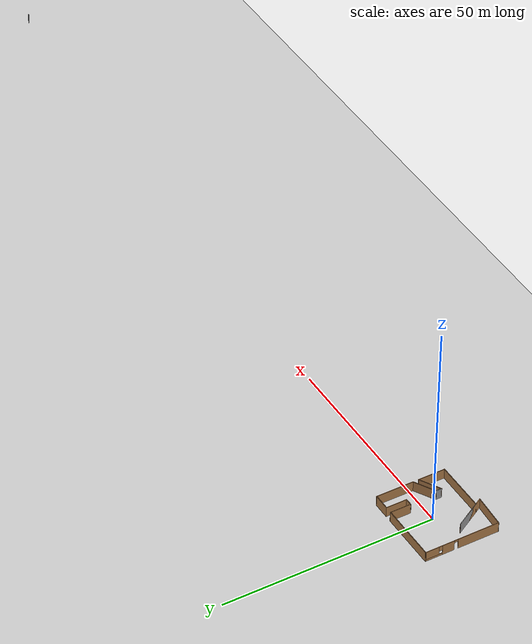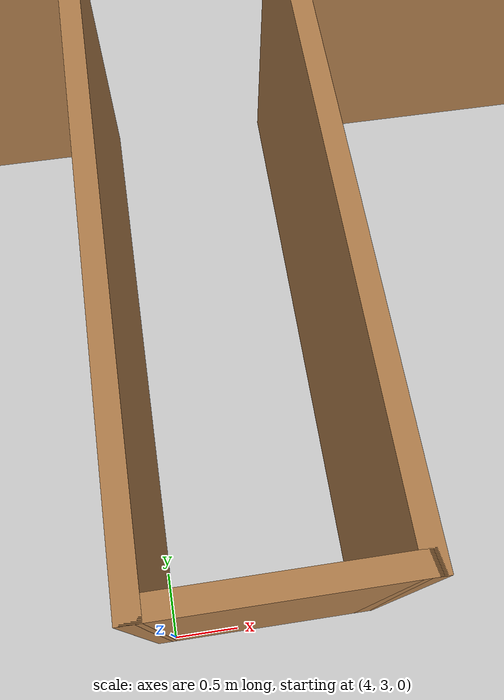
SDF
<sdf version="1.7">
 <world name="default">
  <light name="sun" type="directional">
   <pose>0 0 10 0 -0 0</pose>
   <diffuse>0.8 0.8 0.8 1</diffuse>
   <specular>0.2 0.2 0.2 1</specular>
   <attenuation>
    <range>1000</range>
    <constant>0.9</constant>
    <linear>0.01</linear>
    <quadratic>0.001</quadratic>
   </attenuation>
   <direction>-0.5 0.1 -0.9</direction>
   <spot><inner_angle>0</inner_angle><outer_angle>0</outer_angle><falloff>0</falloff></spot>
  </light>
  <model name="ground_plane">
   <static>1</static>
   <link name="link">
    <collision name="collision">
     <geometry><plane><normal>0 0 1</normal><size>100 100</size></plane></geometry>
     <surface>
      <contact><collide_bitmask>65535</collide_bitmask></contact>
      <friction><ode><mu>100</mu><mu2>50</mu2></ode></friction>
     </surface>
    </collision>
    <visual name="visual">
     <cast_shadows>0</cast_shadows>
     <geometry><plane><normal>0 0 1</normal><size>100 100</size></plane></geometry>
     <material>
      <script><uri>file://media/materials/scripts/gazebo.material</uri><name>Gazebo/Grey</name></script>
     </material>
    </visual>
   </link>
  </model>
  <gravity>0 0 -9.8</gravity>
  <magnetic_field>6e-06 2.3e-05 -4.2e-05</magnetic_field>
  <atmosphere type="adiabatic"/>
  <physics type="ode">
   <max_step_size>0.001</max_step_size>
   <real_time_factor>1</real_time_factor>
   <real_time_update_rate>1000</real_time_update_rate>
  </physics>
  <scene><ambient>0.4 0.4 0.4 1</ambient><background>0.7 0.7 0.7 1</background><shadows>1</shadows></scene>
  <spherical_coordinates>
   <surface_model>EARTH_WGS84</surface_model>
   <latitude_deg>0</latitude_deg>
   <longitude_deg>0</longitude_deg>
   <elevation>0</elevation>
   <heading_deg>0</heading_deg>
  </spherical_coordinates>
  <model name="world1">
   <pose>93.3997 -1.14949 0 0 -0 0</pose>
   <link name="Wall_0">
    <collision name="Wall_0_Collision">
     <geometry><box><size>0.16 0.15 2.5</size></box></geometry>
     <pose>0 0 1.25 0 -0 0</pose>
    </collision>
    <visual name="Wall_0_Visual">
     <pose>0 0 1.25 0 -0 0</pose>
     <geometry><box><size>0.16 0.15 2.5</size></box></geometry>
     <material>
      <script><uri>file://media/materials/scripts/gazebo.material</uri><name>Gazebo/Grey</name></script>
      <ambient>1 1 1 1</ambient>
     </material>
     <meta><layer>0</layer></meta>
    </visual>
    <pose>103.066 -6.16786 0 0 -0 0</pose>
   </link>
   <link name="Wall_10">
    <collision name="Wall_10_Collision">
     <geometry><box><size>5 0.15 2.5</size></box></geometry>
     <pose>0 0 1.25 0 -0 0</pose>
    </collision>
    <visual name="Wall_10_Visual">
     <pose>0 0 1.25 0 -0 0</pose>
     <geometry><box><size>5 0.15 2.5</size></box></geometry>
     <material>
      <script><uri>file://media/materials/scripts/gazebo.material</uri><name>Gazebo/Wood</name></script>
      <ambient>1 1 1 1</ambient>
     </material>
     <meta><layer>0</layer></meta>
    </visual>
    <pose>-87.8665 6.6215 0 0 -0 1.5708</pose>
   </link>
   <link name="Wall_11">
    <collision name="Wall_11_Collision">
     <geometry><box><size>4 0.15 2.5</size></box></geometry>
     <pose>0 0 1.25 0 -0 0</pose>
    </collision>
    <visual name="Wall_11_Visual">
     <pose>0 0 1.25 0 -0 0</pose>
     <geometry><box><size>4 0.15 2.5</size></box></geometry>
     <material>
      <script><uri>file://media/materials/scripts/gazebo.material</uri><name>Gazebo/Wood</name></script>
      <ambient>1 1 1 1</ambient>
     </material>
     <meta><layer>0</layer></meta>
    </visual>
    <pose>-85.9415 9.0465 0 0 -0 0</pose>
   </link>
   <link name="Wall_12">
    <collision name="Wall_12_Collision">
     <geometry><box><size>9 0.15 2.5</size></box></geometry>
     <pose>0 0 1.25 0 -0 0</pose>
    </collision>
    <visual name="Wall_12_Visual">
     <pose>0 0 1.25 0 -0 0</pose>
     <geometry><box><size>9 0.15 2.5</size></box></geometry>
     <material>
      <script><uri>file://media/materials/scripts/gazebo.material</uri><name>Gazebo/Wood</name></script>
      <ambient>1 1 1 1</ambient>
     </material>
     <meta><layer>0</layer></meta>
    </visual>
    <pose>-84.0165 4.6215 0 0 -0 -1.5708</pose>
   </link>
   <link name="Wall_13">
    <collision name="Wall_13_Collision">
     <geometry><box><size>5.5 0.15 2.5</size></box></geometry>
     <pose>0 0 1.25 0 -0 0</pose>
    </collision>
    <visual name="Wall_13_Visual">
     <pose>0 0 1.25 0 -0 0</pose>
     <geometry><box><size>5.5 0.15 2.5</size></box></geometry>
     <material>
      <script><uri>file://media/materials/scripts/gazebo.material</uri><name>Gazebo/Wood</name></script>
      <ambient>1 1 1 1</ambient>
     </material>
     <meta><layer>0</layer></meta>
    </visual>
    <pose>-86.3331 -1.141 0 0 -0 -2.61799</pose>
   </link>
   <link name="Wall_14">
    <collision name="Wall_14_Collision">
     <geometry><box><size>1.5 0.15 2.5</size></box></geometry>
     <pose>0 0 1.25 0 -0 0</pose>
    </collision>
    <visual name="Wall_14_Visual">
     <pose>0 0 1.25 0 -0 0</pose>
     <geometry><box><size>1.5 0.15 2.5</size></box></geometry>
     <material>
      <script><uri>file://media/materials/scripts/gazebo.material</uri><name>Gazebo/Grey</name></script>
      <ambient>1 1 1 1</ambient>
     </material>
     <meta><layer>0</layer></meta>
    </visual>
    <pose>-88.6497 -3.1535 0 0 -0 -1.5708</pose>
   </link>
   <link name="Wall_15">
    <collision name="Wall_15_Collision">
     <geometry><box><size>5.5 0.15 2.5</size></box></geometry>
     <pose>0 0 1.25 0 -0 0</pose>
    </collision>
    <visual name="Wall_15_Visual">
     <pose>0 0 1.25 0 -0 0</pose>
     <geometry><box><size>5.5 0.15 2.5</size></box></geometry>
     <material>
      <script><uri>file://media/materials/scripts/gazebo.material</uri><name>Gazebo/Wood</name></script>
      <ambient>1 1 1 1</ambient>
     </material>
     <meta><layer>0</layer></meta>
    </visual>
    <pose>-86.3331 -2.491 0 0 -0 0.523599</pose>
   </link>
   <link name="Wall_16">
    <collision name="Wall_16_Collision">
     <geometry><box><size>6.5 0.15 2.5</size></box></geometry>
     <pose>0 0 1.25 0 -0 0</pose>
    </collision>
    <visual name="Wall_16_Visual">
     <pose>0 0 1.25 0 -0 0</pose>
     <geometry><box><size>6.5 0.15 2.5</size></box></geometry>
     <material>
      <script><uri>file://media/materials/scripts/gazebo.material</uri><name>Gazebo/Wood</name></script>
      <ambient>1 1 1 1</ambient>
     </material>
     <meta><layer>0</layer></meta>
    </visual>
    <pose>-84.0165 -4.3285 0 0 -0 -1.5708</pose>
   </link>
   <link name="Wall_17">
    <collision name="Wall_17_Collision">
     <geometry><box><size>12.25 0.15 2.5</size></box></geometry>
     <pose>0 0 1.25 0 -0 0</pose>
    </collision>
    <visual name="Wall_17_Visual">
     <pose>0 0 1.25 0 -0 0</pose>
     <geometry><box><size>12.25 0.15 2.5</size></box></geometry>
     <material>
      <script><uri>file://media/materials/scripts/gazebo.material</uri><name>Gazebo/Wood</name></script>
      <ambient>1 1 1 1</ambient>
     </material>
     <meta><layer>0</layer></meta>
    </visual>
    <pose>-90.0665 -7.5035 0 0 -0 3.14159</pose>
   </link>
   <link name="Wall_18">
    <collision name="Wall_18_Collision">
     <geometry><box><size>7 0.15 2.5</size></box></geometry>
     <pose>0 0 1.25 0 -0 0</pose>
    </collision>
    <visual name="Wall_18_Visual">
     <pose>0 0 1.25 0 -0 0</pose>
     <geometry><box><size>7 0.15 2.5</size></box></geometry>
     <material>
      <script><uri>file://media/materials/scripts/gazebo.material</uri><name>Gazebo/Grey</name></script>
      <ambient>1 1 1 1</ambient>
     </material>
     <meta><layer>0</layer></meta>
    </visual>
    <pose>-97.829 -4.53737 0 0 -0 2.0944</pose>
   </link>
   <link name="Wall_19">
    <collision name="Wall_19_Collision">
     <geometry><box><size>8.75 0.15 2.5</size></box></geometry>
     <pose>0 0 1.25 0 -0 0</pose>
    </collision>
    <visual name="Wall_19_Visual">
     <pose>0 0 1.25 0 -0 0</pose>
     <geometry><box><size>8.75 0.15 2.5</size></box></geometry>
     <material>
      <script><uri>file://media/materials/scripts/gazebo.material</uri><name>Gazebo/Wood</name></script>
      <ambient>1 1 1 1</ambient>
     </material>
     <meta><layer>0</layer></meta>
    </visual>
    <pose>-97.3915 -5.29514 0 0 -0 -1.0472</pose>
   </link>
   <link name="Wall_20">
    <collision name="Wall_20_Collision">
     <geometry><box><size>7.98884 0.15 2.5</size></box></geometry>
     <pose>0 0 1.25 0 -0 0</pose>
    </collision>
    <visual name="Wall_20_Visual">
     <pose>0 0 1.25 0 -0 0</pose>
     <geometry><box><size>7.98884 0.15 2.5</size></box></geometry>
     <material>
      <script><uri>file://media/materials/scripts/gazebo.material</uri><name>Gazebo/Wood</name></script>
      <ambient>1 1 1 1</ambient>
     </material>
     <meta><layer>0</layer></meta>
    </visual>
    <pose>-99.154 -8.78627 0 0 -0 3.08217</pose>
   </link>
   <link name="Wall_6">
    <pose>-103.066 0.246498 0 0 -0 1.5708</pose>
    <visual name="Wall_6_Visual_0">
     <pose>-3.92516 0 1.25 0 -0 0</pose>
     <geometry><box><size>9.89968 0.15 2.5</size></box></geometry>
     <material>
      <script><uri>file://media/materials/scripts/gazebo.material</uri><name>Gazebo/Wood</name></script>
      <ambient>1 1 1 1</ambient>
     </material>
     <meta><layer>0</layer></meta>
    </visual>
    <collision name="Wall_6_Collision_0">
     <geometry><box><size>9.89968 0.15 2.5</size></box></geometry>
     <pose>-3.92516 0 1.25 0 -0 0</pose>
    </collision>
    <visual name="Wall_6_Visual_1">
     <pose>3.3517 0 1.25 0 -0 0</pose>
     <geometry><box><size>2.85404 0.15 2.5</size></box></geometry>
     <material>
      <script><uri>file://media/materials/scripts/gazebo.material</uri><name>Gazebo/Wood</name></script>
      <ambient>1 1 1 1</ambient>
     </material>
     <meta><layer>0</layer></meta>
    </visual>
    <collision name="Wall_6_Collision_1">
     <geometry><box><size>2.85404 0.15 2.5</size></box></geometry>
     <pose>3.3517 0 1.25 0 -0 0</pose>
    </collision>
    <visual name="Wall_6_Visual_2">
     <pose>6.82686 0 0.25 0 -0 0</pose>
     <geometry><box><size>4.09628 0.15 0.5</size></box></geometry>
     <material>
      <script><uri>file://media/materials/scripts/gazebo.material</uri><name>Gazebo/Wood</name></script>
      <ambient>1 1 1 1</ambient>
     </material>
     <meta><layer>0</layer></meta>
    </visual>
    <collision name="Wall_6_Collision_2">
     <geometry><box><size>4.09628 0.15 0.5</size></box></geometry>
     <pose>6.82686 0 0.25 0 -0 0</pose>
    </collision>
    <visual name="Wall_6_Visual_3">
     <pose>7.22686 0 1.5 0 -0 0</pose>
     <geometry><box><size>3.29629 0.15 2</size></box></geometry>
     <material>
      <script><uri>file://media/materials/scripts/gazebo.material</uri><name>Gazebo/Wood</name></script>
      <ambient>1 1 1 1</ambient>
     </material>
     <meta><layer>0</layer></meta>
    </visual>
    <collision name="Wall_6_Collision_3">
     <geometry><box><size>3.29629 0.15 2</size></box></geometry>
     <pose>7.22686 0 1.5 0 -0 0</pose>
    </collision>
    <visual name="Wall_6_Visual_4">
     <pose>5.17872 0 1.9 0 -0 0</pose>
     <geometry><box><size>0.8 0.15 1.2</size></box></geometry>
     <material>
      <script><uri>file://media/materials/scripts/gazebo.material</uri><name>Gazebo/Wood</name></script>
      <ambient>1 1 1 1</ambient>
     </material>
     <meta><layer>0</layer></meta>
    </visual>
    <collision name="Wall_6_Collision_4">
     <geometry><box><size>0.8 0.15 1.2</size></box></geometry>
     <pose>5.17872 0 1.9 0 -0 0</pose>
    </collision>
    <visual name="Wall_6_Visual_5">
     <pose>1.47468 0 2.25 0 -0 0</pose>
     <geometry><box><size>0.9 0.15 0.5</size></box></geometry>
     <material>
      <script><uri>file://media/materials/scripts/gazebo.material</uri><name>Gazebo/Wood</name></script>
      <ambient>1 1 1 1</ambient>
     </material>
     <meta><layer>0</layer></meta>
    </visual>
    <collision name="Wall_6_Collision_5">
     <geometry><box><size>0.9 0.15 0.5</size></box></geometry>
     <pose>1.47468 0 2.25 0 -0 0</pose>
    </collision>
   </link>
   <link name="Wall_7">
    <collision name="Wall_7_Collision">
     <geometry><box><size>13.75 0.15 2.5</size></box></geometry>
     <pose>0 0 1.25 0 -0 0</pose>
    </collision>
    <visual name="Wall_7_Visual">
     <pose>0 0 1.25 0 -0 0</pose>
     <geometry><box><size>13.75 0.15 2.5</size></box></geometry>
     <material>
      <script><uri>file://media/materials/scripts/gazebo.material</uri><name>Gazebo/Wood</name></script>
      <ambient>1 1 1 1</ambient>
     </material>
     <meta><layer>0</layer></meta>
    </visual>
    <pose>-96.2665 9.0465 0 0 -0 0</pose>
   </link>
   <link name="Wall_8">
    <collision name="Wall_8_Collision">
     <geometry><box><size>5 0.15 2.5</size></box></geometry>
     <pose>0 0 1.25 0 -0 0</pose>
    </collision>
    <visual name="Wall_8_Visual">
     <pose>0 0 1.25 0 -0 0</pose>
     <geometry><box><size>5 0.15 2.5</size></box></geometry>
     <material>
      <script><uri>file://media/materials/scripts/gazebo.material</uri><name>Gazebo/Wood</name></script>
      <ambient>1 1 1 1</ambient>
     </material>
     <meta><layer>0</layer></meta>
    </visual>
    <pose>-89.4665 6.6215 0 0 -0 -1.5708</pose>
   </link>
   <link name="Wall_9">
    <collision name="Wall_9_Collision">
     <geometry><box><size>1.75 0.15 2.5</size></box></geometry>
     <pose>0 0 1.25 0 -0 0</pose>
    </collision>
    <visual name="Wall_9_Visual">
     <pose>0 0 1.25 0 -0 0</pose>
     <geometry><box><size>1.75 0.15 2.5</size></box></geometry>
     <material>
      <script><uri>file://media/materials/scripts/gazebo.material</uri><name>Gazebo/Wood</name></script>
      <ambient>1 1 1 1</ambient>
     </material>
     <meta><layer>0</layer></meta>
    </visual>
    <pose>-88.6665 4.1965 0 0 -0 0</pose>
   </link>
   <static>1</static>
  </model>
 </world>
</sdf>
